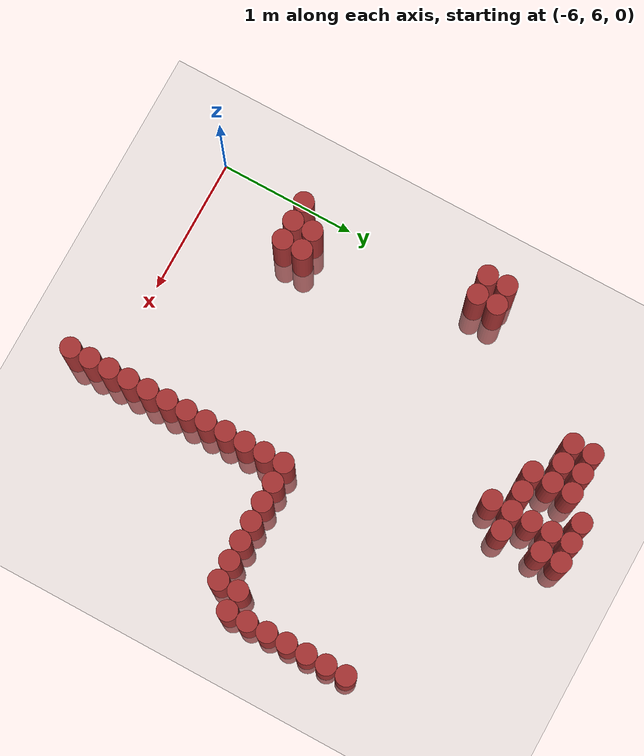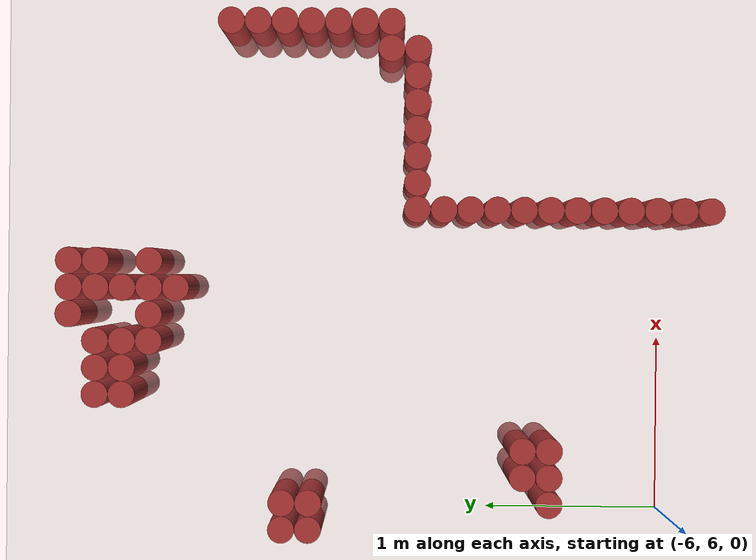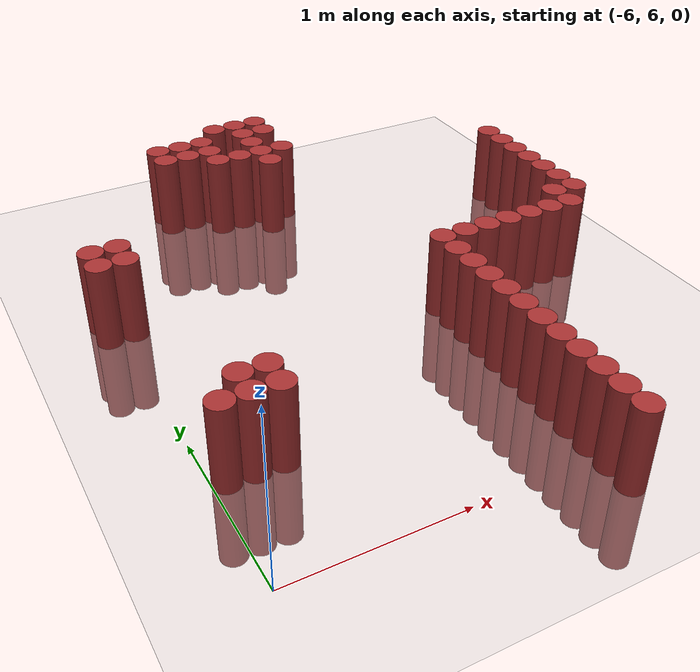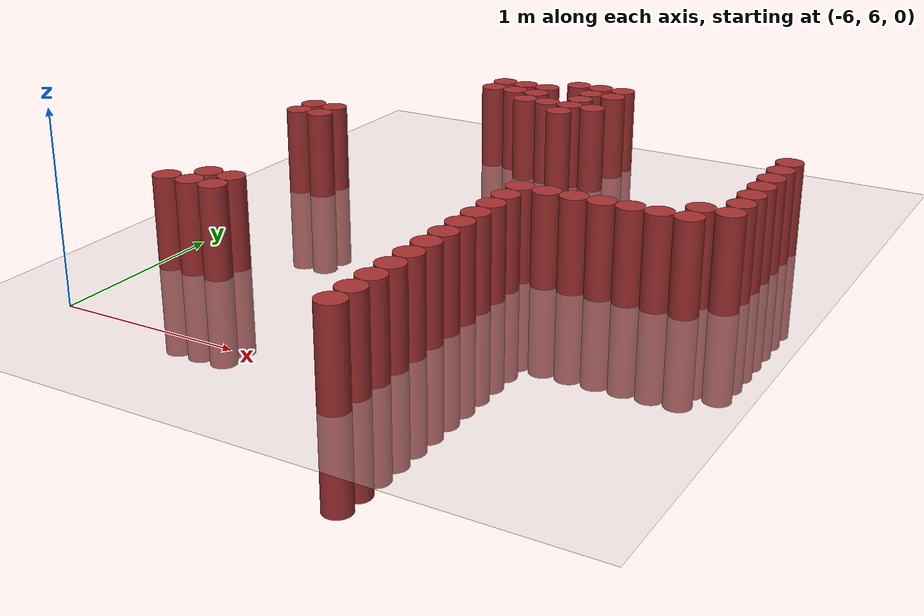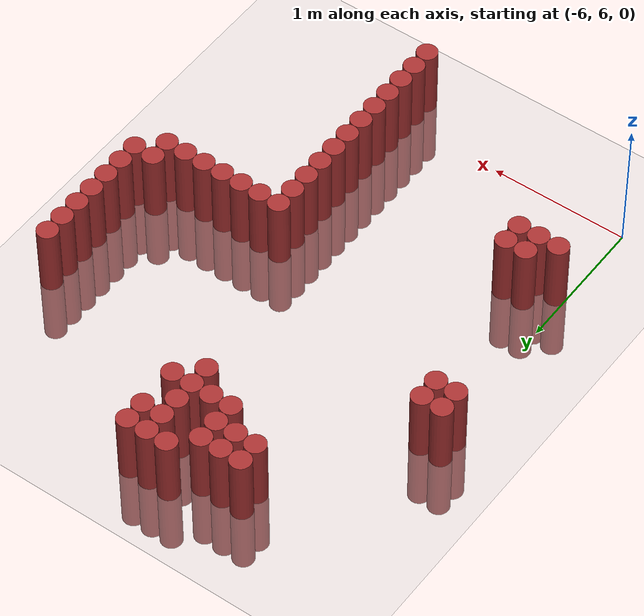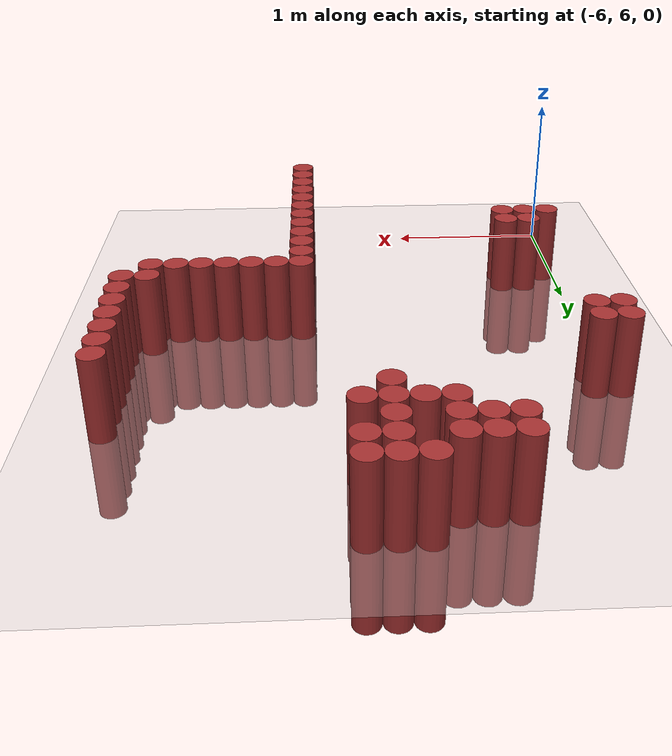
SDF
<sdf version="1.6">
 <world name="default">
  <model name="ground_plane">
   <static>1</static>
   <link name="link">
    <collision name="collision">
     <geometry><plane><normal>0 0 1</normal><size>100 100</size></plane></geometry>
     <surface><friction><ode><mu>100</mu><mu2>50</mu2></ode></friction></surface>
    </collision>
    <visual name="visual">
     <cast_shadows>0</cast_shadows>
     <geometry><plane><normal>0 0 1</normal><size>100 100</size></plane></geometry>
     <material>
      <script><uri>file://media/materials/scripts/gazebo.material</uri><name>Gazebo/Grey</name></script>
     </material>
    </visual>
   </link>
  </model>
  <model name="unit_cylinder_263">
   <static>1</static>
   <pose>-6.075000 8.025000 0.000000 0.000000 0.000000 0.000000</pose>
   <link name="link">
    <inertial>
     <mass>1</mass>
     <inertia><ixx>0.145833</ixx><ixy>0</ixy><ixz>0</ixz><iyy>0.145833</iyy><iyz>0</iyz><izz>0.125</izz></inertia>
    </inertial>
    <collision name="collision">
     <geometry><cylinder><radius>0.075000</radius><length>1</length></cylinder></geometry>
    </collision>
    <visual name="visual">
     <geometry><cylinder><radius>0.075000</radius><length>1</length></cylinder></geometry>
     <material>
      <ambient>0.648000 0.192000 0.192000 1</ambient>
      <diffuse>0.648000 0.192000 0.192000 1</diffuse>
     </material>
     <material>
      <script><name>Gazebo/Grey</name><uri>file://media/materials/scripts/gazebo.material</uri></script>
     </material>
    </visual>
   </link>
  </model>
  <model name="unit_cylinder_264">
   <static>1</static>
   <pose>-6.075000 8.175000 0.000000 0.000000 0.000000 0.000000</pose>
   <link name="link">
    <inertial>
     <mass>1</mass>
     <inertia><ixx>0.145833</ixx><ixy>0</ixy><ixz>0</ixz><iyy>0.145833</iyy><iyz>0</iyz><izz>0.125</izz></inertia>
    </inertial>
    <collision name="collision">
     <geometry><cylinder><radius>0.075000</radius><length>1</length></cylinder></geometry>
    </collision>
    <visual name="visual">
     <geometry><cylinder><radius>0.075000</radius><length>1</length></cylinder></geometry>
     <material>
      <ambient>0.648000 0.192000 0.192000 1</ambient>
      <diffuse>0.648000 0.192000 0.192000 1</diffuse>
     </material>
     <material>
      <script><name>Gazebo/Grey</name><uri>file://media/materials/scripts/gazebo.material</uri></script>
     </material>
    </visual>
   </link>
  </model>
  <model name="unit_cylinder_266">
   <static>1</static>
   <pose>-5.925000 6.675000 0.000000 0.000000 0.000000 0.000000</pose>
   <link name="link">
    <inertial>
     <mass>1</mass>
     <inertia><ixx>0.145833</ixx><ixy>0</ixy><ixz>0</ixz><iyy>0.145833</iyy><iyz>0</iyz><izz>0.125</izz></inertia>
    </inertial>
    <collision name="collision">
     <geometry><cylinder><radius>0.075000</radius><length>1</length></cylinder></geometry>
    </collision>
    <visual name="visual">
     <geometry><cylinder><radius>0.075000</radius><length>1</length></cylinder></geometry>
     <material>
      <ambient>0.648000 0.192000 0.192000 1</ambient>
      <diffuse>0.648000 0.192000 0.192000 1</diffuse>
     </material>
     <material>
      <script><name>Gazebo/Grey</name><uri>file://media/materials/scripts/gazebo.material</uri></script>
     </material>
    </visual>
   </link>
  </model>
  <model name="unit_cylinder_267">
   <static>1</static>
   <pose>-5.925000 8.025000 0.000000 0.000000 0.000000 0.000000</pose>
   <link name="link">
    <inertial>
     <mass>1</mass>
     <inertia><ixx>0.145833</ixx><ixy>0</ixy><ixz>0</ixz><iyy>0.145833</iyy><iyz>0</iyz><izz>0.125</izz></inertia>
    </inertial>
    <collision name="collision">
     <geometry><cylinder><radius>0.075000</radius><length>1</length></cylinder></geometry>
    </collision>
    <visual name="visual">
     <geometry><cylinder><radius>0.075000</radius><length>1</length></cylinder></geometry>
     <material>
      <ambient>0.648000 0.192000 0.192000 1</ambient>
      <diffuse>0.648000 0.192000 0.192000 1</diffuse>
     </material>
     <material>
      <script><name>Gazebo/Grey</name><uri>file://media/materials/scripts/gazebo.material</uri></script>
     </material>
    </visual>
   </link>
  </model>
  <model name="unit_cylinder_268">
   <static>1</static>
   <pose>-5.925000 8.175000 0.000000 0.000000 0.000000 0.000000</pose>
   <link name="link">
    <inertial>
     <mass>1</mass>
     <inertia><ixx>0.145833</ixx><ixy>0</ixy><ixz>0</ixz><iyy>0.145833</iyy><iyz>0</iyz><izz>0.125</izz></inertia>
    </inertial>
    <collision name="collision">
     <geometry><cylinder><radius>0.075000</radius><length>1</length></cylinder></geometry>
    </collision>
    <visual name="visual">
     <geometry><cylinder><radius>0.075000</radius><length>1</length></cylinder></geometry>
     <material>
      <ambient>0.648000 0.192000 0.192000 1</ambient>
      <diffuse>0.648000 0.192000 0.192000 1</diffuse>
     </material>
     <material>
      <script><name>Gazebo/Grey</name><uri>file://media/materials/scripts/gazebo.material</uri></script>
     </material>
    </visual>
   </link>
  </model>
  <model name="unit_cylinder_270">
   <static>1</static>
   <pose>-5.775000 6.675000 0.000000 0.000000 0.000000 0.000000</pose>
   <link name="link">
    <inertial>
     <mass>1</mass>
     <inertia><ixx>0.145833</ixx><ixy>0</ixy><ixz>0</ixz><iyy>0.145833</iyy><iyz>0</iyz><izz>0.125</izz></inertia>
    </inertial>
    <collision name="collision">
     <geometry><cylinder><radius>0.075000</radius><length>1</length></cylinder></geometry>
    </collision>
    <visual name="visual">
     <geometry><cylinder><radius>0.075000</radius><length>1</length></cylinder></geometry>
     <material>
      <ambient>0.648000 0.192000 0.192000 1</ambient>
      <diffuse>0.648000 0.192000 0.192000 1</diffuse>
     </material>
     <material>
      <script><name>Gazebo/Grey</name><uri>file://media/materials/scripts/gazebo.material</uri></script>
     </material>
    </visual>
   </link>
  </model>
  <model name="unit_cylinder_271">
   <static>1</static>
   <pose>-5.775000 6.825000 0.000000 0.000000 0.000000 0.000000</pose>
   <link name="link">
    <inertial>
     <mass>1</mass>
     <inertia><ixx>0.145833</ixx><ixy>0</ixy><ixz>0</ixz><iyy>0.145833</iyy><iyz>0</iyz><izz>0.125</izz></inertia>
    </inertial>
    <collision name="collision">
     <geometry><cylinder><radius>0.075000</radius><length>1</length></cylinder></geometry>
    </collision>
    <visual name="visual">
     <geometry><cylinder><radius>0.075000</radius><length>1</length></cylinder></geometry>
     <material>
      <ambient>0.648000 0.192000 0.192000 1</ambient>
      <diffuse>0.648000 0.192000 0.192000 1</diffuse>
     </material>
     <material>
      <script><name>Gazebo/Grey</name><uri>file://media/materials/scripts/gazebo.material</uri></script>
     </material>
    </visual>
   </link>
  </model>
  <model name="unit_cylinder_273">
   <static>1</static>
   <pose>-5.625000 6.675000 0.000000 0.000000 0.000000 0.000000</pose>
   <link name="link">
    <inertial>
     <mass>1</mass>
     <inertia><ixx>0.145833</ixx><ixy>0</ixy><ixz>0</ixz><iyy>0.145833</iyy><iyz>0</iyz><izz>0.125</izz></inertia>
    </inertial>
    <collision name="collision">
     <geometry><cylinder><radius>0.075000</radius><length>1</length></cylinder></geometry>
    </collision>
    <visual name="visual">
     <geometry><cylinder><radius>0.075000</radius><length>1</length></cylinder></geometry>
     <material>
      <ambient>0.648000 0.192000 0.192000 1</ambient>
      <diffuse>0.648000 0.192000 0.192000 1</diffuse>
     </material>
     <material>
      <script><name>Gazebo/Grey</name><uri>file://media/materials/scripts/gazebo.material</uri></script>
     </material>
    </visual>
   </link>
  </model>
  <model name="unit_cylinder_274">
   <static>1</static>
   <pose>-5.625000 6.825000 0.000000 0.000000 0.000000 0.000000</pose>
   <link name="link">
    <inertial>
     <mass>1</mass>
     <inertia><ixx>0.145833</ixx><ixy>0</ixy><ixz>0</ixz><iyy>0.145833</iyy><iyz>0</iyz><izz>0.125</izz></inertia>
    </inertial>
    <collision name="collision">
     <geometry><cylinder><radius>0.075000</radius><length>1</length></cylinder></geometry>
    </collision>
    <visual name="visual">
     <geometry><cylinder><radius>0.075000</radius><length>1</length></cylinder></geometry>
     <material>
      <ambient>0.648000 0.192000 0.192000 1</ambient>
      <diffuse>0.648000 0.192000 0.192000 1</diffuse>
     </material>
     <material>
      <script><name>Gazebo/Grey</name><uri>file://media/materials/scripts/gazebo.material</uri></script>
     </material>
    </visual>
   </link>
  </model>
  <model name="unit_cylinder_278">
   <static>1</static>
   <pose>-5.325000 9.075000 0.000000 0.000000 0.000000 0.000000</pose>
   <link name="link">
    <inertial>
     <mass>1</mass>
     <inertia><ixx>0.145833</ixx><ixy>0</ixy><ixz>0</ixz><iyy>0.145833</iyy><iyz>0</iyz><izz>0.125</izz></inertia>
    </inertial>
    <collision name="collision">
     <geometry><cylinder><radius>0.075000</radius><length>1</length></cylinder></geometry>
    </collision>
    <visual name="visual">
     <geometry><cylinder><radius>0.075000</radius><length>1</length></cylinder></geometry>
     <material>
      <ambient>0.648000 0.192000 0.192000 1</ambient>
      <diffuse>0.648000 0.192000 0.192000 1</diffuse>
     </material>
     <material>
      <script><name>Gazebo/Grey</name><uri>file://media/materials/scripts/gazebo.material</uri></script>
     </material>
    </visual>
   </link>
  </model>
  <model name="unit_cylinder_279">
   <static>1</static>
   <pose>-5.325000 9.225000 0.000000 0.000000 0.000000 0.000000</pose>
   <link name="link">
    <inertial>
     <mass>1</mass>
     <inertia><ixx>0.145833</ixx><ixy>0</ixy><ixz>0</ixz><iyy>0.145833</iyy><iyz>0</iyz><izz>0.125</izz></inertia>
    </inertial>
    <collision name="collision">
     <geometry><cylinder><radius>0.075000</radius><length>1</length></cylinder></geometry>
    </collision>
    <visual name="visual">
     <geometry><cylinder><radius>0.075000</radius><length>1</length></cylinder></geometry>
     <material>
      <ambient>0.648000 0.192000 0.192000 1</ambient>
      <diffuse>0.648000 0.192000 0.192000 1</diffuse>
     </material>
     <material>
      <script><name>Gazebo/Grey</name><uri>file://media/materials/scripts/gazebo.material</uri></script>
     </material>
    </visual>
   </link>
  </model>
  <model name="unit_cylinder_282">
   <static>1</static>
   <pose>-5.175000 9.075000 0.000000 0.000000 0.000000 0.000000</pose>
   <link name="link">
    <inertial>
     <mass>1</mass>
     <inertia><ixx>0.145833</ixx><ixy>0</ixy><ixz>0</ixz><iyy>0.145833</iyy><iyz>0</iyz><izz>0.125</izz></inertia>
    </inertial>
    <collision name="collision">
     <geometry><cylinder><radius>0.075000</radius><length>1</length></cylinder></geometry>
    </collision>
    <visual name="visual">
     <geometry><cylinder><radius>0.075000</radius><length>1</length></cylinder></geometry>
     <material>
      <ambient>0.648000 0.192000 0.192000 1</ambient>
      <diffuse>0.648000 0.192000 0.192000 1</diffuse>
     </material>
     <material>
      <script><name>Gazebo/Grey</name><uri>file://media/materials/scripts/gazebo.material</uri></script>
     </material>
    </visual>
   </link>
  </model>
  <model name="unit_cylinder_283">
   <static>1</static>
   <pose>-5.175000 9.225000 0.000000 0.000000 0.000000 0.000000</pose>
   <link name="link">
    <inertial>
     <mass>1</mass>
     <inertia><ixx>0.145833</ixx><ixy>0</ixy><ixz>0</ixz><iyy>0.145833</iyy><iyz>0</iyz><izz>0.125</izz></inertia>
    </inertial>
    <collision name="collision">
     <geometry><cylinder><radius>0.075000</radius><length>1</length></cylinder></geometry>
    </collision>
    <visual name="visual">
     <geometry><cylinder><radius>0.075000</radius><length>1</length></cylinder></geometry>
     <material>
      <ambient>0.648000 0.192000 0.192000 1</ambient>
      <diffuse>0.648000 0.192000 0.192000 1</diffuse>
     </material>
     <material>
      <script><name>Gazebo/Grey</name><uri>file://media/materials/scripts/gazebo.material</uri></script>
     </material>
    </visual>
   </link>
  </model>
  <model name="unit_cylinder_286">
   <static>1</static>
   <pose>-5.025000 8.925000 0.000000 0.000000 0.000000 0.000000</pose>
   <link name="link">
    <inertial>
     <mass>1</mass>
     <inertia><ixx>0.145833</ixx><ixy>0</ixy><ixz>0</ixz><iyy>0.145833</iyy><iyz>0</iyz><izz>0.125</izz></inertia>
    </inertial>
    <collision name="collision">
     <geometry><cylinder><radius>0.075000</radius><length>1</length></cylinder></geometry>
    </collision>
    <visual name="visual">
     <geometry><cylinder><radius>0.075000</radius><length>1</length></cylinder></geometry>
     <material>
      <ambient>0.648000 0.192000 0.192000 1</ambient>
      <diffuse>0.648000 0.192000 0.192000 1</diffuse>
     </material>
     <material>
      <script><name>Gazebo/Grey</name><uri>file://media/materials/scripts/gazebo.material</uri></script>
     </material>
    </visual>
   </link>
  </model>
  <model name="unit_cylinder_287">
   <static>1</static>
   <pose>-5.025000 9.075000 0.000000 0.000000 0.000000 0.000000</pose>
   <link name="link">
    <inertial>
     <mass>1</mass>
     <inertia><ixx>0.145833</ixx><ixy>0</ixy><ixz>0</ixz><iyy>0.145833</iyy><iyz>0</iyz><izz>0.125</izz></inertia>
    </inertial>
    <collision name="collision">
     <geometry><cylinder><radius>0.075000</radius><length>1</length></cylinder></geometry>
    </collision>
    <visual name="visual">
     <geometry><cylinder><radius>0.075000</radius><length>1</length></cylinder></geometry>
     <material>
      <ambient>0.648000 0.192000 0.192000 1</ambient>
      <diffuse>0.648000 0.192000 0.192000 1</diffuse>
     </material>
     <material>
      <script><name>Gazebo/Grey</name><uri>file://media/materials/scripts/gazebo.material</uri></script>
     </material>
    </visual>
   </link>
  </model>
  <model name="unit_cylinder_288">
   <static>1</static>
   <pose>-5.025000 9.225000 0.000000 0.000000 0.000000 0.000000</pose>
   <link name="link">
    <inertial>
     <mass>1</mass>
     <inertia><ixx>0.145833</ixx><ixy>0</ixy><ixz>0</ixz><iyy>0.145833</iyy><iyz>0</iyz><izz>0.125</izz></inertia>
    </inertial>
    <collision name="collision">
     <geometry><cylinder><radius>0.075000</radius><length>1</length></cylinder></geometry>
    </collision>
    <visual name="visual">
     <geometry><cylinder><radius>0.075000</radius><length>1</length></cylinder></geometry>
     <material>
      <ambient>0.648000 0.192000 0.192000 1</ambient>
      <diffuse>0.648000 0.192000 0.192000 1</diffuse>
     </material>
     <material>
      <script><name>Gazebo/Grey</name><uri>file://media/materials/scripts/gazebo.material</uri></script>
     </material>
    </visual>
   </link>
  </model>
  <model name="unit_cylinder_291">
   <static>1</static>
   <pose>-4.875000 8.925000 0.000000 0.000000 0.000000 0.000000</pose>
   <link name="link">
    <inertial>
     <mass>1</mass>
     <inertia><ixx>0.145833</ixx><ixy>0</ixy><ixz>0</ixz><iyy>0.145833</iyy><iyz>0</iyz><izz>0.125</izz></inertia>
    </inertial>
    <collision name="collision">
     <geometry><cylinder><radius>0.075000</radius><length>1</length></cylinder></geometry>
    </collision>
    <visual name="visual">
     <geometry><cylinder><radius>0.075000</radius><length>1</length></cylinder></geometry>
     <material>
      <ambient>0.648000 0.192000 0.192000 1</ambient>
      <diffuse>0.648000 0.192000 0.192000 1</diffuse>
     </material>
     <material>
      <script><name>Gazebo/Grey</name><uri>file://media/materials/scripts/gazebo.material</uri></script>
     </material>
    </visual>
   </link>
  </model>
  <model name="unit_cylinder_292">
   <static>1</static>
   <pose>-4.875000 9.375000 0.000000 0.000000 0.000000 0.000000</pose>
   <link name="link">
    <inertial>
     <mass>1</mass>
     <inertia><ixx>0.145833</ixx><ixy>0</ixy><ixz>0</ixz><iyy>0.145833</iyy><iyz>0</iyz><izz>0.125</izz></inertia>
    </inertial>
    <collision name="collision">
     <geometry><cylinder><radius>0.075000</radius><length>1</length></cylinder></geometry>
    </collision>
    <visual name="visual">
     <geometry><cylinder><radius>0.075000</radius><length>1</length></cylinder></geometry>
     <material>
      <ambient>0.648000 0.192000 0.192000 1</ambient>
      <diffuse>0.648000 0.192000 0.192000 1</diffuse>
     </material>
     <material>
      <script><name>Gazebo/Grey</name><uri>file://media/materials/scripts/gazebo.material</uri></script>
     </material>
    </visual>
   </link>
  </model>
  <model name="unit_cylinder_295">
   <static>1</static>
   <pose>-4.725000 8.775000 0.000000 0.000000 0.000000 0.000000</pose>
   <link name="link">
    <inertial>
     <mass>1</mass>
     <inertia><ixx>0.145833</ixx><ixy>0</ixy><ixz>0</ixz><iyy>0.145833</iyy><iyz>0</iyz><izz>0.125</izz></inertia>
    </inertial>
    <collision name="collision">
     <geometry><cylinder><radius>0.075000</radius><length>1</length></cylinder></geometry>
    </collision>
    <visual name="visual">
     <geometry><cylinder><radius>0.075000</radius><length>1</length></cylinder></geometry>
     <material>
      <ambient>0.648000 0.192000 0.192000 1</ambient>
      <diffuse>0.648000 0.192000 0.192000 1</diffuse>
     </material>
     <material>
      <script><name>Gazebo/Grey</name><uri>file://media/materials/scripts/gazebo.material</uri></script>
     </material>
    </visual>
   </link>
  </model>
  <model name="unit_cylinder_296">
   <static>1</static>
   <pose>-4.725000 8.925000 0.000000 0.000000 0.000000 0.000000</pose>
   <link name="link">
    <inertial>
     <mass>1</mass>
     <inertia><ixx>0.145833</ixx><ixy>0</ixy><ixz>0</ixz><iyy>0.145833</iyy><iyz>0</iyz><izz>0.125</izz></inertia>
    </inertial>
    <collision name="collision">
     <geometry><cylinder><radius>0.075000</radius><length>1</length></cylinder></geometry>
    </collision>
    <visual name="visual">
     <geometry><cylinder><radius>0.075000</radius><length>1</length></cylinder></geometry>
     <material>
      <ambient>0.648000 0.192000 0.192000 1</ambient>
      <diffuse>0.648000 0.192000 0.192000 1</diffuse>
     </material>
     <material>
      <script><name>Gazebo/Grey</name><uri>file://media/materials/scripts/gazebo.material</uri></script>
     </material>
    </visual>
   </link>
  </model>
  <model name="unit_cylinder_297">
   <static>1</static>
   <pose>-4.725000 9.075000 0.000000 0.000000 0.000000 0.000000</pose>
   <link name="link">
    <inertial>
     <mass>1</mass>
     <inertia><ixx>0.145833</ixx><ixy>0</ixy><ixz>0</ixz><iyy>0.145833</iyy><iyz>0</iyz><izz>0.125</izz></inertia>
    </inertial>
    <collision name="collision">
     <geometry><cylinder><radius>0.075000</radius><length>1</length></cylinder></geometry>
    </collision>
    <visual name="visual">
     <geometry><cylinder><radius>0.075000</radius><length>1</length></cylinder></geometry>
     <material>
      <ambient>0.648000 0.192000 0.192000 1</ambient>
      <diffuse>0.648000 0.192000 0.192000 1</diffuse>
     </material>
     <material>
      <script><name>Gazebo/Grey</name><uri>file://media/materials/scripts/gazebo.material</uri></script>
     </material>
    </visual>
   </link>
  </model>
  <model name="unit_cylinder_298">
   <static>1</static>
   <pose>-4.725000 9.225000 0.000000 0.000000 0.000000 0.000000</pose>
   <link name="link">
    <inertial>
     <mass>1</mass>
     <inertia><ixx>0.145833</ixx><ixy>0</ixy><ixz>0</ixz><iyy>0.145833</iyy><iyz>0</iyz><izz>0.125</izz></inertia>
    </inertial>
    <collision name="collision">
     <geometry><cylinder><radius>0.075000</radius><length>1</length></cylinder></geometry>
    </collision>
    <visual name="visual">
     <geometry><cylinder><radius>0.075000</radius><length>1</length></cylinder></geometry>
     <material>
      <ambient>0.648000 0.192000 0.192000 1</ambient>
      <diffuse>0.648000 0.192000 0.192000 1</diffuse>
     </material>
     <material>
      <script><name>Gazebo/Grey</name><uri>file://media/materials/scripts/gazebo.material</uri></script>
     </material>
    </visual>
   </link>
  </model>
  <model name="unit_cylinder_299">
   <static>1</static>
   <pose>-4.725000 9.375000 0.000000 0.000000 0.000000 0.000000</pose>
   <link name="link">
    <inertial>
     <mass>1</mass>
     <inertia><ixx>0.145833</ixx><ixy>0</ixy><ixz>0</ixz><iyy>0.145833</iyy><iyz>0</iyz><izz>0.125</izz></inertia>
    </inertial>
    <collision name="collision">
     <geometry><cylinder><radius>0.075000</radius><length>1</length></cylinder></geometry>
    </collision>
    <visual name="visual">
     <geometry><cylinder><radius>0.075000</radius><length>1</length></cylinder></geometry>
     <material>
      <ambient>0.648000 0.192000 0.192000 1</ambient>
      <diffuse>0.648000 0.192000 0.192000 1</diffuse>
     </material>
     <material>
      <script><name>Gazebo/Grey</name><uri>file://media/materials/scripts/gazebo.material</uri></script>
     </material>
    </visual>
   </link>
  </model>
  <model name="unit_cylinder_302">
   <static>1</static>
   <pose>-4.575000 8.925000 0.000000 0.000000 0.000000 0.000000</pose>
   <link name="link">
    <inertial>
     <mass>1</mass>
     <inertia><ixx>0.145833</ixx><ixy>0</ixy><ixz>0</ixz><iyy>0.145833</iyy><iyz>0</iyz><izz>0.125</izz></inertia>
    </inertial>
    <collision name="collision">
     <geometry><cylinder><radius>0.075000</radius><length>1</length></cylinder></geometry>
    </collision>
    <visual name="visual">
     <geometry><cylinder><radius>0.075000</radius><length>1</length></cylinder></geometry>
     <material>
      <ambient>0.648000 0.192000 0.192000 1</ambient>
      <diffuse>0.648000 0.192000 0.192000 1</diffuse>
     </material>
     <material>
      <script><name>Gazebo/Grey</name><uri>file://media/materials/scripts/gazebo.material</uri></script>
     </material>
    </visual>
   </link>
  </model>
  <model name="unit_cylinder_303">
   <static>1</static>
   <pose>-4.575000 9.225000 0.000000 0.000000 0.000000 0.000000</pose>
   <link name="link">
    <inertial>
     <mass>1</mass>
     <inertia><ixx>0.145833</ixx><ixy>0</ixy><ixz>0</ixz><iyy>0.145833</iyy><iyz>0</iyz><izz>0.125</izz></inertia>
    </inertial>
    <collision name="collision">
     <geometry><cylinder><radius>0.075000</radius><length>1</length></cylinder></geometry>
    </collision>
    <visual name="visual">
     <geometry><cylinder><radius>0.075000</radius><length>1</length></cylinder></geometry>
     <material>
      <ambient>0.648000 0.192000 0.192000 1</ambient>
      <diffuse>0.648000 0.192000 0.192000 1</diffuse>
     </material>
     <material>
      <script><name>Gazebo/Grey</name><uri>file://media/materials/scripts/gazebo.material</uri></script>
     </material>
    </visual>
   </link>
  </model>
  <model name="unit_cylinder_304">
   <static>1</static>
   <pose>-4.575000 9.375000 0.000000 0.000000 0.000000 0.000000</pose>
   <link name="link">
    <inertial>
     <mass>1</mass>
     <inertia><ixx>0.145833</ixx><ixy>0</ixy><ixz>0</ixz><iyy>0.145833</iyy><iyz>0</iyz><izz>0.125</izz></inertia>
    </inertial>
    <collision name="collision">
     <geometry><cylinder><radius>0.075000</radius><length>1</length></cylinder></geometry>
    </collision>
    <visual name="visual">
     <geometry><cylinder><radius>0.075000</radius><length>1</length></cylinder></geometry>
     <material>
      <ambient>0.648000 0.192000 0.192000 1</ambient>
      <diffuse>0.648000 0.192000 0.192000 1</diffuse>
     </material>
     <material>
      <script><name>Gazebo/Grey</name><uri>file://media/materials/scripts/gazebo.material</uri></script>
     </material>
    </visual>
   </link>
  </model>
  <model name="unit_cylinder_311">
   <static>1</static>
   <pose>-4.275000 5.775000 0.000000 0.000000 0.000000 0.000000</pose>
   <link name="link">
    <inertial>
     <mass>1</mass>
     <inertia><ixx>0.145833</ixx><ixy>0</ixy><ixz>0</ixz><iyy>0.145833</iyy><iyz>0</iyz><izz>0.125</izz></inertia>
    </inertial>
    <collision name="collision">
     <geometry><cylinder><radius>0.075000</radius><length>1</length></cylinder></geometry>
    </collision>
    <visual name="visual">
     <geometry><cylinder><radius>0.075000</radius><length>1</length></cylinder></geometry>
     <material>
      <ambient>0.648000 0.192000 0.192000 1</ambient>
      <diffuse>0.648000 0.192000 0.192000 1</diffuse>
     </material>
     <material>
      <script><name>Gazebo/Grey</name><uri>file://media/materials/scripts/gazebo.material</uri></script>
     </material>
    </visual>
   </link>
  </model>
  <model name="unit_cylinder_312">
   <static>1</static>
   <pose>-4.275000 5.925000 0.000000 0.000000 0.000000 0.000000</pose>
   <link name="link">
    <inertial>
     <mass>1</mass>
     <inertia><ixx>0.145833</ixx><ixy>0</ixy><ixz>0</ixz><iyy>0.145833</iyy><iyz>0</iyz><izz>0.125</izz></inertia>
    </inertial>
    <collision name="collision">
     <geometry><cylinder><radius>0.075000</radius><length>1</length></cylinder></geometry>
    </collision>
    <visual name="visual">
     <geometry><cylinder><radius>0.075000</radius><length>1</length></cylinder></geometry>
     <material>
      <ambient>0.648000 0.192000 0.192000 1</ambient>
      <diffuse>0.648000 0.192000 0.192000 1</diffuse>
     </material>
     <material>
      <script><name>Gazebo/Grey</name><uri>file://media/materials/scripts/gazebo.material</uri></script>
     </material>
    </visual>
   </link>
  </model>
  <model name="unit_cylinder_313">
   <static>1</static>
   <pose>-4.275000 6.075000 0.000000 0.000000 0.000000 0.000000</pose>
   <link name="link">
    <inertial>
     <mass>1</mass>
     <inertia><ixx>0.145833</ixx><ixy>0</ixy><ixz>0</ixz><iyy>0.145833</iyy><iyz>0</iyz><izz>0.125</izz></inertia>
    </inertial>
    <collision name="collision">
     <geometry><cylinder><radius>0.075000</radius><length>1</length></cylinder></geometry>
    </collision>
    <visual name="visual">
     <geometry><cylinder><radius>0.075000</radius><length>1</length></cylinder></geometry>
     <material>
      <ambient>0.648000 0.192000 0.192000 1</ambient>
      <diffuse>0.648000 0.192000 0.192000 1</diffuse>
     </material>
     <material>
      <script><name>Gazebo/Grey</name><uri>file://media/materials/scripts/gazebo.material</uri></script>
     </material>
    </visual>
   </link>
  </model>
  <model name="unit_cylinder_314">
   <static>1</static>
   <pose>-4.275000 6.225000 0.000000 0.000000 0.000000 0.000000</pose>
   <link name="link">
    <inertial>
     <mass>1</mass>
     <inertia><ixx>0.145833</ixx><ixy>0</ixy><ixz>0</ixz><iyy>0.145833</iyy><iyz>0</iyz><izz>0.125</izz></inertia>
    </inertial>
    <collision name="collision">
     <geometry><cylinder><radius>0.075000</radius><length>1</length></cylinder></geometry>
    </collision>
    <visual name="visual">
     <geometry><cylinder><radius>0.075000</radius><length>1</length></cylinder></geometry>
     <material>
      <ambient>0.648000 0.192000 0.192000 1</ambient>
      <diffuse>0.648000 0.192000 0.192000 1</diffuse>
     </material>
     <material>
      <script><name>Gazebo/Grey</name><uri>file://media/materials/scripts/gazebo.material</uri></script>
     </material>
    </visual>
   </link>
  </model>
  <model name="unit_cylinder_315">
   <static>1</static>
   <pose>-4.275000 6.375000 0.000000 0.000000 0.000000 0.000000</pose>
   <link name="link">
    <inertial>
     <mass>1</mass>
     <inertia><ixx>0.145833</ixx><ixy>0</ixy><ixz>0</ixz><iyy>0.145833</iyy><iyz>0</iyz><izz>0.125</izz></inertia>
    </inertial>
    <collision name="collision">
     <geometry><cylinder><radius>0.075000</radius><length>1</length></cylinder></geometry>
    </collision>
    <visual name="visual">
     <geometry><cylinder><radius>0.075000</radius><length>1</length></cylinder></geometry>
     <material>
      <ambient>0.648000 0.192000 0.192000 1</ambient>
      <diffuse>0.648000 0.192000 0.192000 1</diffuse>
     </material>
     <material>
      <script><name>Gazebo/Grey</name><uri>file://media/materials/scripts/gazebo.material</uri></script>
     </material>
    </visual>
   </link>
  </model>
  <model name="unit_cylinder_316">
   <static>1</static>
   <pose>-4.275000 6.525000 0.000000 0.000000 0.000000 0.000000</pose>
   <link name="link">
    <inertial>
     <mass>1</mass>
     <inertia><ixx>0.145833</ixx><ixy>0</ixy><ixz>0</ixz><iyy>0.145833</iyy><iyz>0</iyz><izz>0.125</izz></inertia>
    </inertial>
    <collision name="collision">
     <geometry><cylinder><radius>0.075000</radius><length>1</length></cylinder></geometry>
    </collision>
    <visual name="visual">
     <geometry><cylinder><radius>0.075000</radius><length>1</length></cylinder></geometry>
     <material>
      <ambient>0.648000 0.192000 0.192000 1</ambient>
      <diffuse>0.648000 0.192000 0.192000 1</diffuse>
     </material>
     <material>
      <script><name>Gazebo/Grey</name><uri>file://media/materials/scripts/gazebo.material</uri></script>
     </material>
    </visual>
   </link>
  </model>
  <model name="unit_cylinder_317">
   <static>1</static>
   <pose>-4.275000 6.675000 0.000000 0.000000 0.000000 0.000000</pose>
   <link name="link">
    <inertial>
     <mass>1</mass>
     <inertia><ixx>0.145833</ixx><ixy>0</ixy><ixz>0</ixz><iyy>0.145833</iyy><iyz>0</iyz><izz>0.125</izz></inertia>
    </inertial>
    <collision name="collision">
     <geometry><cylinder><radius>0.075000</radius><length>1</length></cylinder></geometry>
    </collision>
    <visual name="visual">
     <geometry><cylinder><radius>0.075000</radius><length>1</length></cylinder></geometry>
     <material>
      <ambient>0.648000 0.192000 0.192000 1</ambient>
      <diffuse>0.648000 0.192000 0.192000 1</diffuse>
     </material>
     <material>
      <script><name>Gazebo/Grey</name><uri>file://media/materials/scripts/gazebo.material</uri></script>
     </material>
    </visual>
   </link>
  </model>
  <model name="unit_cylinder_318">
   <static>1</static>
   <pose>-4.275000 6.825000 0.000000 0.000000 0.000000 0.000000</pose>
   <link name="link">
    <inertial>
     <mass>1</mass>
     <inertia><ixx>0.145833</ixx><ixy>0</ixy><ixz>0</ixz><iyy>0.145833</iyy><iyz>0</iyz><izz>0.125</izz></inertia>
    </inertial>
    <collision name="collision">
     <geometry><cylinder><radius>0.075000</radius><length>1</length></cylinder></geometry>
    </collision>
    <visual name="visual">
     <geometry><cylinder><radius>0.075000</radius><length>1</length></cylinder></geometry>
     <material>
      <ambient>0.648000 0.192000 0.192000 1</ambient>
      <diffuse>0.648000 0.192000 0.192000 1</diffuse>
     </material>
     <material>
      <script><name>Gazebo/Grey</name><uri>file://media/materials/scripts/gazebo.material</uri></script>
     </material>
    </visual>
   </link>
  </model>
  <model name="unit_cylinder_319">
   <static>1</static>
   <pose>-4.275000 6.975000 0.000000 0.000000 0.000000 0.000000</pose>
   <link name="link">
    <inertial>
     <mass>1</mass>
     <inertia><ixx>0.145833</ixx><ixy>0</ixy><ixz>0</ixz><iyy>0.145833</iyy><iyz>0</iyz><izz>0.125</izz></inertia>
    </inertial>
    <collision name="collision">
     <geometry><cylinder><radius>0.075000</radius><length>1</length></cylinder></geometry>
    </collision>
    <visual name="visual">
     <geometry><cylinder><radius>0.075000</radius><length>1</length></cylinder></geometry>
     <material>
      <ambient>0.648000 0.192000 0.192000 1</ambient>
      <diffuse>0.648000 0.192000 0.192000 1</diffuse>
     </material>
     <material>
      <script><name>Gazebo/Grey</name><uri>file://media/materials/scripts/gazebo.material</uri></script>
     </material>
    </visual>
   </link>
  </model>
  <model name="unit_cylinder_320">
   <static>1</static>
   <pose>-4.275000 7.125000 0.000000 0.000000 0.000000 0.000000</pose>
   <link name="link">
    <inertial>
     <mass>1</mass>
     <inertia><ixx>0.145833</ixx><ixy>0</ixy><ixz>0</ixz><iyy>0.145833</iyy><iyz>0</iyz><izz>0.125</izz></inertia>
    </inertial>
    <collision name="collision">
     <geometry><cylinder><radius>0.075000</radius><length>1</length></cylinder></geometry>
    </collision>
    <visual name="visual">
     <geometry><cylinder><radius>0.075000</radius><length>1</length></cylinder></geometry>
     <material>
      <ambient>0.648000 0.192000 0.192000 1</ambient>
      <diffuse>0.648000 0.192000 0.192000 1</diffuse>
     </material>
     <material>
      <script><name>Gazebo/Grey</name><uri>file://media/materials/scripts/gazebo.material</uri></script>
     </material>
    </visual>
   </link>
  </model>
  <model name="unit_cylinder_321">
   <static>1</static>
   <pose>-4.275000 7.275000 0.000000 0.000000 0.000000 0.000000</pose>
   <link name="link">
    <inertial>
     <mass>1</mass>
     <inertia><ixx>0.145833</ixx><ixy>0</ixy><ixz>0</ixz><iyy>0.145833</iyy><iyz>0</iyz><izz>0.125</izz></inertia>
    </inertial>
    <collision name="collision">
     <geometry><cylinder><radius>0.075000</radius><length>1</length></cylinder></geometry>
    </collision>
    <visual name="visual">
     <geometry><cylinder><radius>0.075000</radius><length>1</length></cylinder></geometry>
     <material>
      <ambient>0.648000 0.192000 0.192000 1</ambient>
      <diffuse>0.648000 0.192000 0.192000 1</diffuse>
     </material>
     <material>
      <script><name>Gazebo/Grey</name><uri>file://media/materials/scripts/gazebo.material</uri></script>
     </material>
    </visual>
   </link>
  </model>
  <model name="unit_cylinder_322">
   <static>1</static>
   <pose>-4.275000 7.425000 0.000000 0.000000 0.000000 0.000000</pose>
   <link name="link">
    <inertial>
     <mass>1</mass>
     <inertia><ixx>0.145833</ixx><ixy>0</ixy><ixz>0</ixz><iyy>0.145833</iyy><iyz>0</iyz><izz>0.125</izz></inertia>
    </inertial>
    <collision name="collision">
     <geometry><cylinder><radius>0.075000</radius><length>1</length></cylinder></geometry>
    </collision>
    <visual name="visual">
     <geometry><cylinder><radius>0.075000</radius><length>1</length></cylinder></geometry>
     <material>
      <ambient>0.648000 0.192000 0.192000 1</ambient>
      <diffuse>0.648000 0.192000 0.192000 1</diffuse>
     </material>
     <material>
      <script><name>Gazebo/Grey</name><uri>file://media/materials/scripts/gazebo.material</uri></script>
     </material>
    </visual>
   </link>
  </model>
  <model name="unit_cylinder_324">
   <static>1</static>
   <pose>-4.125000 7.425000 0.000000 0.000000 0.000000 0.000000</pose>
   <link name="link">
    <inertial>
     <mass>1</mass>
     <inertia><ixx>0.145833</ixx><ixy>0</ixy><ixz>0</ixz><iyy>0.145833</iyy><iyz>0</iyz><izz>0.125</izz></inertia>
    </inertial>
    <collision name="collision">
     <geometry><cylinder><radius>0.075000</radius><length>1</length></cylinder></geometry>
    </collision>
    <visual name="visual">
     <geometry><cylinder><radius>0.075000</radius><length>1</length></cylinder></geometry>
     <material>
      <ambient>0.648000 0.192000 0.192000 1</ambient>
      <diffuse>0.648000 0.192000 0.192000 1</diffuse>
     </material>
     <material>
      <script><name>Gazebo/Grey</name><uri>file://media/materials/scripts/gazebo.material</uri></script>
     </material>
    </visual>
   </link>
  </model>
  <model name="unit_cylinder_326">
   <static>1</static>
   <pose>-3.975000 7.425000 0.000000 0.000000 0.000000 0.000000</pose>
   <link name="link">
    <inertial>
     <mass>1</mass>
     <inertia><ixx>0.145833</ixx><ixy>0</ixy><ixz>0</ixz><iyy>0.145833</iyy><iyz>0</iyz><izz>0.125</izz></inertia>
    </inertial>
    <collision name="collision">
     <geometry><cylinder><radius>0.075000</radius><length>1</length></cylinder></geometry>
    </collision>
    <visual name="visual">
     <geometry><cylinder><radius>0.075000</radius><length>1</length></cylinder></geometry>
     <material>
      <ambient>0.648000 0.192000 0.192000 1</ambient>
      <diffuse>0.648000 0.192000 0.192000 1</diffuse>
     </material>
     <material>
      <script><name>Gazebo/Grey</name><uri>file://media/materials/scripts/gazebo.material</uri></script>
     </material>
    </visual>
   </link>
  </model>
  <model name="unit_cylinder_328">
   <static>1</static>
   <pose>-3.825000 7.425000 0.000000 0.000000 0.000000 0.000000</pose>
   <link name="link">
    <inertial>
     <mass>1</mass>
     <inertia><ixx>0.145833</ixx><ixy>0</ixy><ixz>0</ixz><iyy>0.145833</iyy><iyz>0</iyz><izz>0.125</izz></inertia>
    </inertial>
    <collision name="collision">
     <geometry><cylinder><radius>0.075000</radius><length>1</length></cylinder></geometry>
    </collision>
    <visual name="visual">
     <geometry><cylinder><radius>0.075000</radius><length>1</length></cylinder></geometry>
     <material>
      <ambient>0.648000 0.192000 0.192000 1</ambient>
      <diffuse>0.648000 0.192000 0.192000 1</diffuse>
     </material>
     <material>
      <script><name>Gazebo/Grey</name><uri>file://media/materials/scripts/gazebo.material</uri></script>
     </material>
    </visual>
   </link>
  </model>
  <model name="unit_cylinder_330">
   <static>1</static>
   <pose>-3.675000 7.425000 0.000000 0.000000 0.000000 0.000000</pose>
   <link name="link">
    <inertial>
     <mass>1</mass>
     <inertia><ixx>0.145833</ixx><ixy>0</ixy><ixz>0</ixz><iyy>0.145833</iyy><iyz>0</iyz><izz>0.125</izz></inertia>
    </inertial>
    <collision name="collision">
     <geometry><cylinder><radius>0.075000</radius><length>1</length></cylinder></geometry>
    </collision>
    <visual name="visual">
     <geometry><cylinder><radius>0.075000</radius><length>1</length></cylinder></geometry>
     <material>
      <ambient>0.648000 0.192000 0.192000 1</ambient>
      <diffuse>0.648000 0.192000 0.192000 1</diffuse>
     </material>
     <material>
      <script><name>Gazebo/Grey</name><uri>file://media/materials/scripts/gazebo.material</uri></script>
     </material>
    </visual>
   </link>
  </model>
  <model name="unit_cylinder_332">
   <static>1</static>
   <pose>-3.525000 7.425000 0.000000 0.000000 0.000000 0.000000</pose>
   <link name="link">
    <inertial>
     <mass>1</mass>
     <inertia><ixx>0.145833</ixx><ixy>0</ixy><ixz>0</ixz><iyy>0.145833</iyy><iyz>0</iyz><izz>0.125</izz></inertia>
    </inertial>
    <collision name="collision">
     <geometry><cylinder><radius>0.075000</radius><length>1</length></cylinder></geometry>
    </collision>
    <visual name="visual">
     <geometry><cylinder><radius>0.075000</radius><length>1</length></cylinder></geometry>
     <material>
      <ambient>0.648000 0.192000 0.192000 1</ambient>
      <diffuse>0.648000 0.192000 0.192000 1</diffuse>
     </material>
     <material>
      <script><name>Gazebo/Grey</name><uri>file://media/materials/scripts/gazebo.material</uri></script>
     </material>
    </visual>
   </link>
  </model>
  <model name="unit_cylinder_334">
   <static>1</static>
   <pose>-3.375000 7.425000 0.000000 0.000000 0.000000 0.000000</pose>
   <link name="link">
    <inertial>
     <mass>1</mass>
     <inertia><ixx>0.145833</ixx><ixy>0</ixy><ixz>0</ixz><iyy>0.145833</iyy><iyz>0</iyz><izz>0.125</izz></inertia>
    </inertial>
    <collision name="collision">
     <geometry><cylinder><radius>0.075000</radius><length>1</length></cylinder></geometry>
    </collision>
    <visual name="visual">
     <geometry><cylinder><radius>0.075000</radius><length>1</length></cylinder></geometry>
     <material>
      <ambient>0.648000 0.192000 0.192000 1</ambient>
      <diffuse>0.648000 0.192000 0.192000 1</diffuse>
     </material>
     <material>
      <script><name>Gazebo/Grey</name><uri>file://media/materials/scripts/gazebo.material</uri></script>
     </material>
    </visual>
   </link>
  </model>
  <model name="unit_cylinder_335">
   <static>1</static>
   <pose>-3.375000 7.575000 0.000000 0.000000 0.000000 0.000000</pose>
   <link name="link">
    <inertial>
     <mass>1</mass>
     <inertia><ixx>0.145833</ixx><ixy>0</ixy><ixz>0</ixz><iyy>0.145833</iyy><iyz>0</iyz><izz>0.125</izz></inertia>
    </inertial>
    <collision name="collision">
     <geometry><cylinder><radius>0.075000</radius><length>1</length></cylinder></geometry>
    </collision>
    <visual name="visual">
     <geometry><cylinder><radius>0.075000</radius><length>1</length></cylinder></geometry>
     <material>
      <ambient>0.648000 0.192000 0.192000 1</ambient>
      <diffuse>0.648000 0.192000 0.192000 1</diffuse>
     </material>
     <material>
      <script><name>Gazebo/Grey</name><uri>file://media/materials/scripts/gazebo.material</uri></script>
     </material>
    </visual>
   </link>
  </model>
  <model name="unit_cylinder_337">
   <static>1</static>
   <pose>-3.225000 7.575000 0.000000 0.000000 0.000000 0.000000</pose>
   <link name="link">
    <inertial>
     <mass>1</mass>
     <inertia><ixx>0.145833</ixx><ixy>0</ixy><ixz>0</ixz><iyy>0.145833</iyy><iyz>0</iyz><izz>0.125</izz></inertia>
    </inertial>
    <collision name="collision">
     <geometry><cylinder><radius>0.075000</radius><length>1</length></cylinder></geometry>
    </collision>
    <visual name="visual">
     <geometry><cylinder><radius>0.075000</radius><length>1</length></cylinder></geometry>
     <material>
      <ambient>0.648000 0.192000 0.192000 1</ambient>
      <diffuse>0.648000 0.192000 0.192000 1</diffuse>
     </material>
     <material>
      <script><name>Gazebo/Grey</name><uri>file://media/materials/scripts/gazebo.material</uri></script>
     </material>
    </visual>
   </link>
  </model>
  <model name="unit_cylinder_338">
   <static>1</static>
   <pose>-3.225000 7.725000 0.000000 0.000000 0.000000 0.000000</pose>
   <link name="link">
    <inertial>
     <mass>1</mass>
     <inertia><ixx>0.145833</ixx><ixy>0</ixy><ixz>0</ixz><iyy>0.145833</iyy><iyz>0</iyz><izz>0.125</izz></inertia>
    </inertial>
    <collision name="collision">
     <geometry><cylinder><radius>0.075000</radius><length>1</length></cylinder></geometry>
    </collision>
    <visual name="visual">
     <geometry><cylinder><radius>0.075000</radius><length>1</length></cylinder></geometry>
     <material>
      <ambient>0.648000 0.192000 0.192000 1</ambient>
      <diffuse>0.648000 0.192000 0.192000 1</diffuse>
     </material>
     <material>
      <script><name>Gazebo/Grey</name><uri>file://media/materials/scripts/gazebo.material</uri></script>
     </material>
    </visual>
   </link>
  </model>
  <model name="unit_cylinder_339">
   <static>1</static>
   <pose>-3.225000 7.875000 0.000000 0.000000 0.000000 0.000000</pose>
   <link name="link">
    <inertial>
     <mass>1</mass>
     <inertia><ixx>0.145833</ixx><ixy>0</ixy><ixz>0</ixz><iyy>0.145833</iyy><iyz>0</iyz><izz>0.125</izz></inertia>
    </inertial>
    <collision name="collision">
     <geometry><cylinder><radius>0.075000</radius><length>1</length></cylinder></geometry>
    </collision>
    <visual name="visual">
     <geometry><cylinder><radius>0.075000</radius><length>1</length></cylinder></geometry>
     <material>
      <ambient>0.648000 0.192000 0.192000 1</ambient>
      <diffuse>0.648000 0.192000 0.192000 1</diffuse>
     </material>
     <material>
      <script><name>Gazebo/Grey</name><uri>file://media/materials/scripts/gazebo.material</uri></script>
     </material>
    </visual>
   </link>
  </model>
  <model name="unit_cylinder_340">
   <static>1</static>
   <pose>-3.225000 8.025000 0.000000 0.000000 0.000000 0.000000</pose>
   <link name="link">
    <inertial>
     <mass>1</mass>
     <inertia><ixx>0.145833</ixx><ixy>0</ixy><ixz>0</ixz><iyy>0.145833</iyy><iyz>0</iyz><izz>0.125</izz></inertia>
    </inertial>
    <collision name="collision">
     <geometry><cylinder><radius>0.075000</radius><length>1</length></cylinder></geometry>
    </collision>
    <visual name="visual">
     <geometry><cylinder><radius>0.075000</radius><length>1</length></cylinder></geometry>
     <material>
      <ambient>0.648000 0.192000 0.192000 1</ambient>
      <diffuse>0.648000 0.192000 0.192000 1</diffuse>
     </material>
     <material>
      <script><name>Gazebo/Grey</name><uri>file://media/materials/scripts/gazebo.material</uri></script>
     </material>
    </visual>
   </link>
  </model>
  <model name="unit_cylinder_341">
   <static>1</static>
   <pose>-3.225000 8.175000 0.000000 0.000000 0.000000 0.000000</pose>
   <link name="link">
    <inertial>
     <mass>1</mass>
     <inertia><ixx>0.145833</ixx><ixy>0</ixy><ixz>0</ixz><iyy>0.145833</iyy><iyz>0</iyz><izz>0.125</izz></inertia>
    </inertial>
    <collision name="collision">
     <geometry><cylinder><radius>0.075000</radius><length>1</length></cylinder></geometry>
    </collision>
    <visual name="visual">
     <geometry><cylinder><radius>0.075000</radius><length>1</length></cylinder></geometry>
     <material>
      <ambient>0.648000 0.192000 0.192000 1</ambient>
      <diffuse>0.648000 0.192000 0.192000 1</diffuse>
     </material>
     <material>
      <script><name>Gazebo/Grey</name><uri>file://media/materials/scripts/gazebo.material</uri></script>
     </material>
    </visual>
   </link>
  </model>
  <model name="unit_cylinder_342">
   <static>1</static>
   <pose>-3.225000 8.325000 0.000000 0.000000 0.000000 0.000000</pose>
   <link name="link">
    <inertial>
     <mass>1</mass>
     <inertia><ixx>0.145833</ixx><ixy>0</ixy><ixz>0</ixz><iyy>0.145833</iyy><iyz>0</iyz><izz>0.125</izz></inertia>
    </inertial>
    <collision name="collision">
     <geometry><cylinder><radius>0.075000</radius><length>1</length></cylinder></geometry>
    </collision>
    <visual name="visual">
     <geometry><cylinder><radius>0.075000</radius><length>1</length></cylinder></geometry>
     <material>
      <ambient>0.648000 0.192000 0.192000 1</ambient>
      <diffuse>0.648000 0.192000 0.192000 1</diffuse>
     </material>
     <material>
      <script><name>Gazebo/Grey</name><uri>file://media/materials/scripts/gazebo.material</uri></script>
     </material>
    </visual>
   </link>
  </model>
  <model name="unit_cylinder_343">
   <static>1</static>
   <pose>-3.225000 8.475000 0.000000 0.000000 0.000000 0.000000</pose>
   <link name="link">
    <inertial>
     <mass>1</mass>
     <inertia><ixx>0.145833</ixx><ixy>0</ixy><ixz>0</ixz><iyy>0.145833</iyy><iyz>0</iyz><izz>0.125</izz></inertia>
    </inertial>
    <collision name="collision">
     <geometry><cylinder><radius>0.075000</radius><length>1</length></cylinder></geometry>
    </collision>
    <visual name="visual">
     <geometry><cylinder><radius>0.075000</radius><length>1</length></cylinder></geometry>
     <material>
      <ambient>0.648000 0.192000 0.192000 1</ambient>
      <diffuse>0.648000 0.192000 0.192000 1</diffuse>
     </material>
     <material>
      <script><name>Gazebo/Grey</name><uri>file://media/materials/scripts/gazebo.material</uri></script>
     </material>
    </visual>
   </link>
  </model>
 </world>
</sdf>
